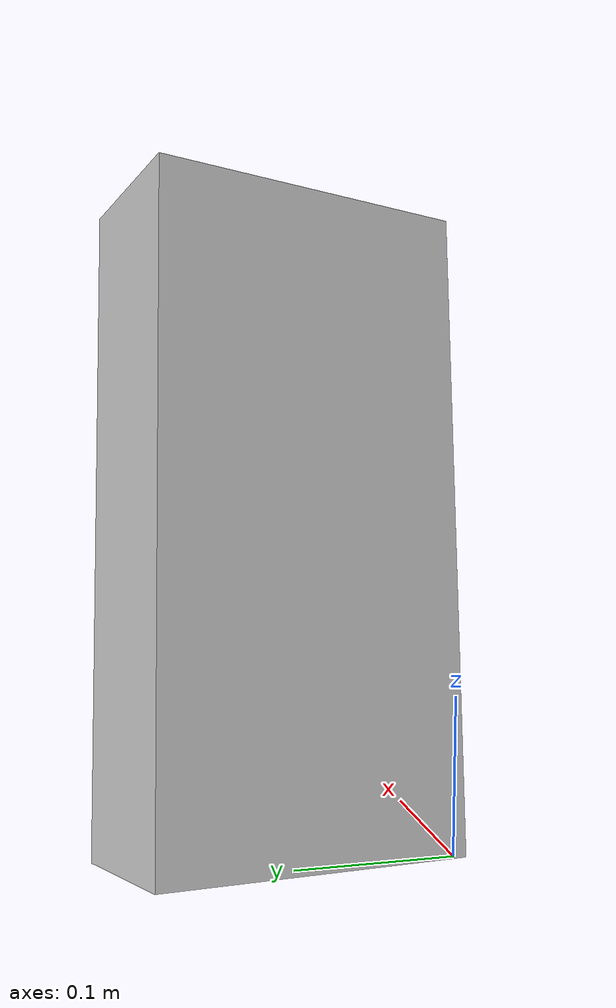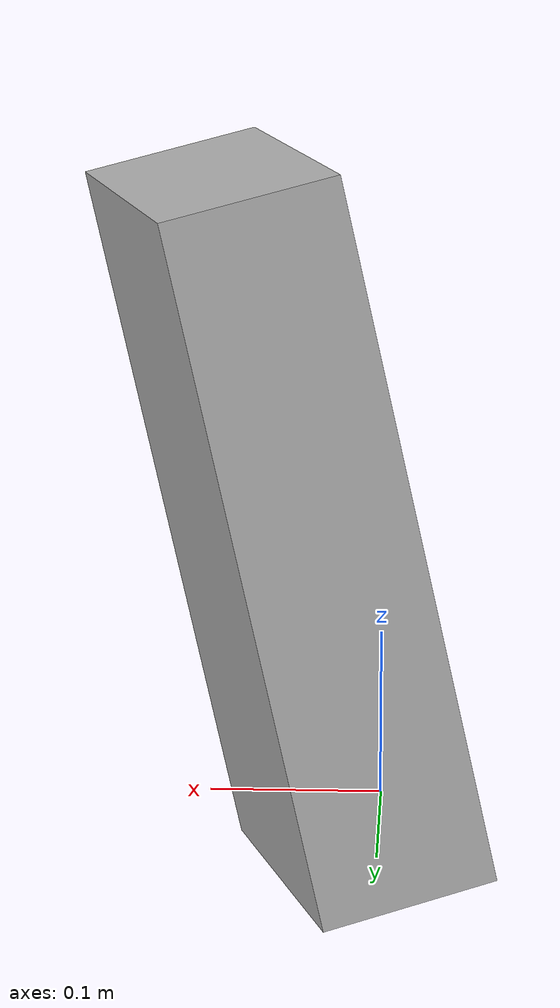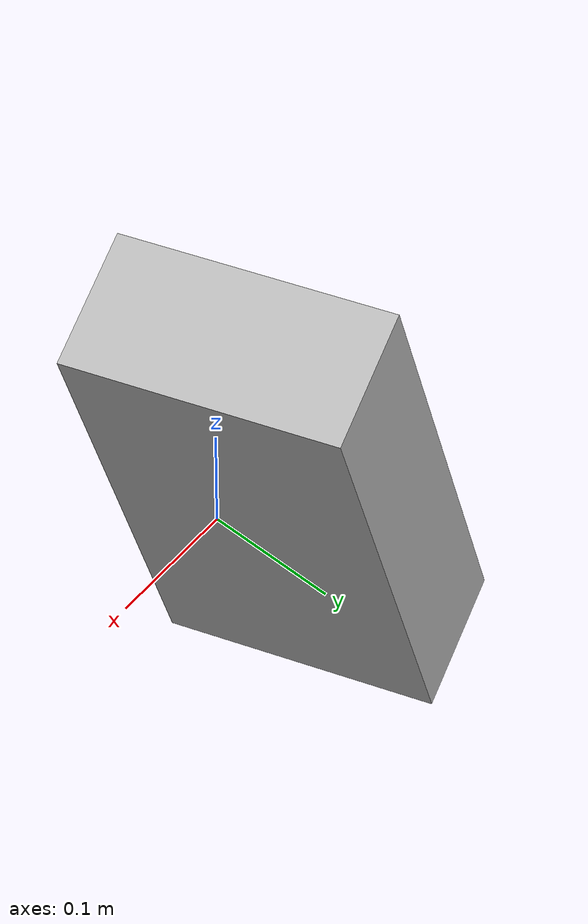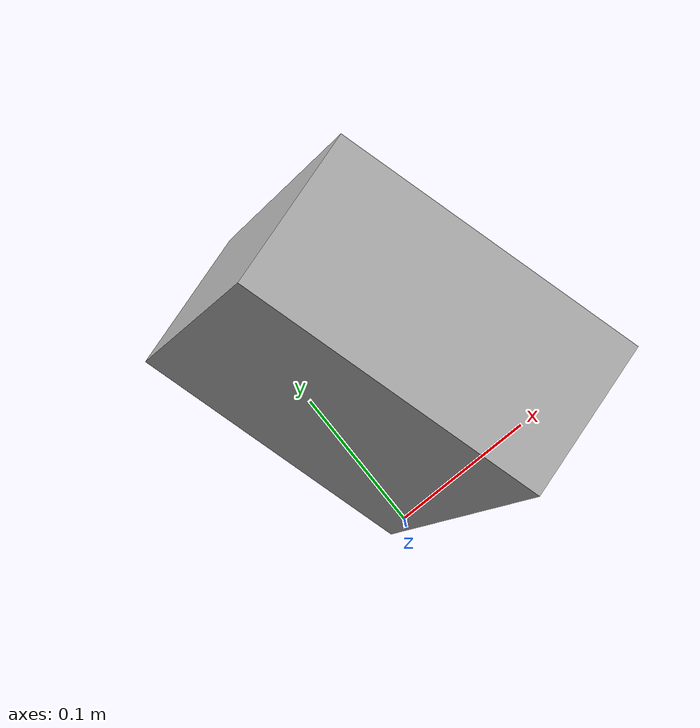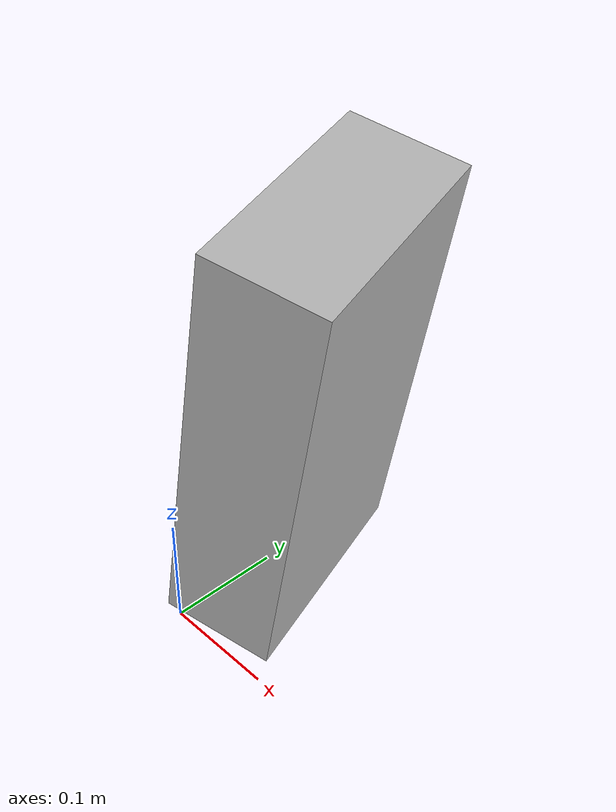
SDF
<?xml version='1.0' encoding='utf-8'?>
<sdf version="1.7">
  <model name="pose_visual">
    <link name="link">
      <visual name="link_visual">
        <pose>0.05 0.1 0.2 0.1 0.2 0.3</pose>
        <geometry>
          <box>
            <size>0.1 0.2 0.4</size>
          </box>
        </geometry>
      </visual>
      <collision name="link_collision">
        <geometry>
          <box>
            <size>0.1 0.2 0.4</size>
          </box>
        </geometry>
      </collision>
      <inertial>
        <mass>1.23</mass>
        <inertia>
          <ixx>0.0205</ixx>
          <ixy>0</ixy>
          <ixz>0</ixz>
          <iyy>0.017425</iyy>
          <iyz>0</iyz>
          <izz>0.005125</izz>
        </inertia>
      </inertial>
    </link>
  </model>
</sdf>
